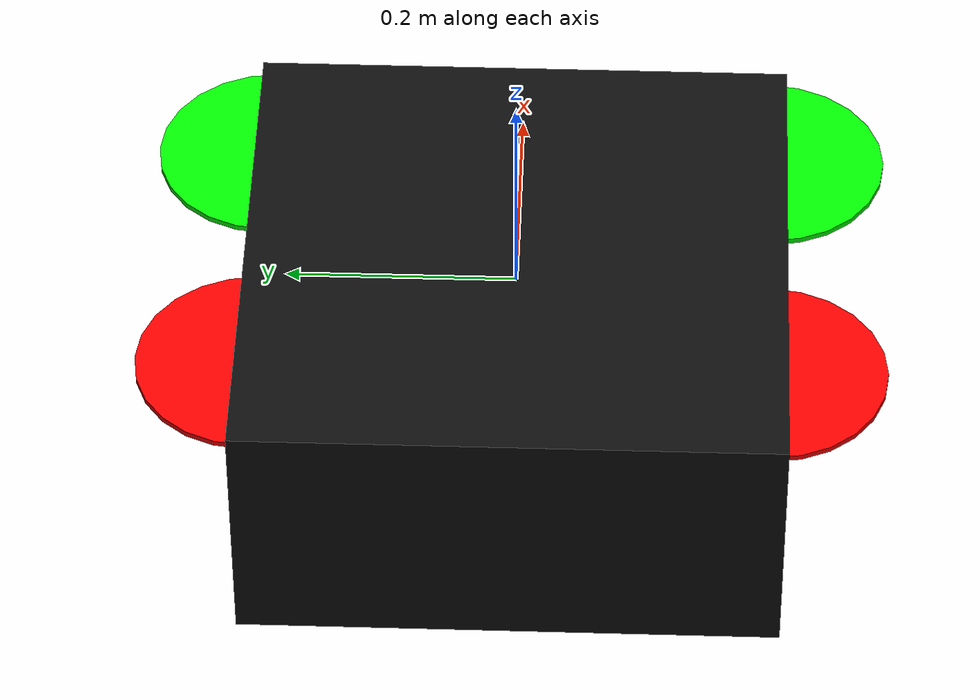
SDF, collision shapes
<?xml version='1.0'?>
<sdf version="1.9">
  <model name="iris_with_ardupilot">
    <include>
      <uri>model://iris_with_standoffs</uri>
    </include>
    <!-- plugins -->
    <plugin filename="gz-sim-imu-system"
      name="gz::sim::systems::Imu">
    </plugin>
    <plugin filename="gz-sim-joint-state-publisher-system"
      name="gz::sim::systems::JointStatePublisher">
    </plugin>
    <plugin filename="gz-sim-lift-drag-system"
        name="gz::sim::systems::LiftDrag">
      <a0>0.3</a0>
      <alpha_stall>1.4</alpha_stall>
      <cla>4.2500</cla>
      <cda>0.10</cda>
      <cma>0.0</cma>
      <cla_stall>-0.025</cla_stall>
      <cda_stall>0.0</cda_stall>
      <cma_stall>0.0</cma_stall>
      <area>0.002</area>
      <air_density>1.2041</air_density>
      <cp>0.084 0 0</cp>
      <forward>0 -1 0</forward>
      <upward>0 0 1</upward>
      <link_name>iris_with_standoffs::rotor_0</link_name>
    </plugin>
    <plugin filename="gz-sim-lift-drag-system"
        name="gz::sim::systems::LiftDrag">
      <a0>0.3</a0>
      <alpha_stall>1.4</alpha_stall>
      <cla>4.2500</cla>
      <cda>0.10</cda>
      <cma>0.0</cma>
      <cla_stall>-0.025</cla_stall>
      <cda_stall>0.0</cda_stall>
      <cma_stall>0.0</cma_stall>
      <area>0.002</area>
      <air_density>1.2041</air_density>
      <cp>-0.084 0 0</cp>
      <forward>0 1 0</forward>
      <upward>0 0 1</upward>
      <link_name>iris_with_standoffs::rotor_0</link_name>
    </plugin>

    <plugin filename="gz-sim-lift-drag-system"
        name="gz::sim::systems::LiftDrag">
      <a0>0.3</a0>
      <alpha_stall>1.4</alpha_stall>
      <cla>4.2500</cla>
      <cda>0.10</cda>
      <cma>0.0</cma>
      <cla_stall>-0.025</cla_stall>
      <cda_stall>0.0</cda_stall>
      <cma_stall>0.0</cma_stall>
      <area>0.002</area>
      <air_density>1.2041</air_density>
      <cp>0.084 0 0</cp>
      <forward>0 -1 0</forward>
      <upward>0 0 1</upward>
      <link_name>iris_with_standoffs::rotor_1</link_name>
    </plugin>
    <plugin filename="gz-sim-lift-drag-system"
        name="gz::sim::systems::LiftDrag">
      <a0>0.3</a0>
      <alpha_stall>1.4</alpha_stall>
      <cla>4.2500</cla>
      <cda>0.10</cda>
      <cma>0.0</cma>
      <cla_stall>-0.025</cla_stall>
      <cda_stall>0.0</cda_stall>
      <cma_stall>0.0</cma_stall>
      <area>0.002</area>
      <air_density>1.2041</air_density>
      <cp>-0.084 0 0</cp>
      <forward>0 1 0</forward>
      <upward>0 0 1</upward>
      <link_name>iris_with_standoffs::rotor_1</link_name>
    </plugin>

    <plugin filename="gz-sim-lift-drag-system"
        name="gz::sim::systems::LiftDrag">
      <a0>0.3</a0>
      <alpha_stall>1.4</alpha_stall>
      <cla>4.2500</cla>
      <cda>0.10</cda>
      <cma>0.0</cma>
      <cla_stall>-0.025</cla_stall>
      <cda_stall>0.0</cda_stall>
      <cma_stall>0.0</cma_stall>
      <area>0.002</area>
      <air_density>1.2041</air_density>
      <cp>0.084 0 0</cp>
      <forward>0 1 0</forward>
      <upward>0 0 1</upward>
      <link_name>iris_with_standoffs::rotor_2</link_name>
    </plugin>
    <plugin filename="gz-sim-lift-drag-system"
        name="gz::sim::systems::LiftDrag">
      <a0>0.3</a0>
      <alpha_stall>1.4</alpha_stall>
      <cla>4.2500</cla>
      <cda>0.10</cda>
      <cma>0.0</cma>
      <cla_stall>-0.025</cla_stall>
      <cda_stall>0.0</cda_stall>
      <cma_stall>0.0</cma_stall>
      <area>0.002</area>
      <air_density>1.2041</air_density>
      <cp>-0.084 0 0</cp>
      <forward>0 -1 0</forward>
      <upward>0 0 1</upward>
      <link_name>iris_with_standoffs::rotor_2</link_name>
    </plugin>

    <plugin filename="gz-sim-lift-drag-system"
        name="gz::sim::systems::LiftDrag">
      <a0>0.3</a0>
      <alpha_stall>1.4</alpha_stall>
      <cla>4.2500</cla>
      <cda>0.10</cda>
      <cma>0.0</cma>
      <cla_stall>-0.025</cla_stall>
      <cda_stall>0.0</cda_stall>
      <cma_stall>0.0</cma_stall>
      <area>0.002</area>
      <air_density>1.2041</air_density>
      <cp>0.084 0 0</cp>
      <forward>0 1 0</forward>
      <upward>0 0 1</upward>
      <link_name>iris_with_standoffs::rotor_3</link_name>
    </plugin>
    <plugin filename="gz-sim-lift-drag-system"
        name="gz::sim::systems::LiftDrag">
      <a0>0.3</a0>
      <alpha_stall>1.4</alpha_stall>
      <cla>4.2500</cla>
      <cda>0.10</cda>
      <cma>0.0</cma>
      <cla_stall>-0.025</cla_stall>
      <cda_stall>0.0</cda_stall>
      <cma_stall>0.0</cma_stall>
      <area>0.002</area>
      <air_density>1.2041</air_density>
      <cp>-0.084 0 0</cp>
      <forward>0 -1 0</forward>
      <upward>0 0 1</upward>
      <link_name>iris_with_standoffs::rotor_3</link_name>
    </plugin>

    <plugin filename="gz-sim-apply-joint-force-system"
      name="gz::sim::systems::ApplyJointForce">
      <joint_name>iris_with_standoffs::rotor_0_joint</joint_name>
    </plugin>
    <plugin filename="gz-sim-apply-joint-force-system"
      name="gz::sim::systems::ApplyJointForce">
      <joint_name>iris_with_standoffs::rotor_1_joint</joint_name>
    </plugin>
    <plugin filename="gz-sim-apply-joint-force-system"
      name="gz::sim::systems::ApplyJointForce">
      <joint_name>iris_with_standoffs::rotor_2_joint</joint_name>
    </plugin>
    <plugin filename="gz-sim-apply-joint-force-system"
      name="gz::sim::systems::ApplyJointForce">
      <joint_name>iris_with_standoffs::rotor_3_joint</joint_name>
    </plugin>

	<plugin filename="Iflight" name="Iflight">
		<rotor index="0">
			<joint_name>iris_with_standoffs::rotor_0_joint</joint_name>
			<direction_k>-1</direction_k>
		</rotor>
		<rotor index="2">
			<joint_name>iris_with_standoffs::rotor_2_joint</joint_name>
			<direction_k>1</direction_k>
		</rotor>
		<rotor index="1">
			<joint_name>iris_with_standoffs::rotor_1_joint</joint_name>
			<direction_k>-1</direction_k>
		</rotor>
		<rotor index="3">
			<joint_name>iris_with_standoffs::rotor_3_joint</joint_name>
			<direction_k>1</direction_k>
		</rotor>
	</plugin>

  </model>
</sdf>

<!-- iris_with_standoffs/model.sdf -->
<sdf version='1.9'>
  <model name='iris_with_standoffs'>
    <pose>0 0 0 0 0 0</pose>
    <link name='base_link'>
      <velocity_decay>
        <linear>0.0</linear>
        <angular>0.0</angular>
      </velocity_decay>
      <inertial>
        <pose>0 0 0 0 0 0</pose>
        <mass>1.5</mass>
        <inertia>
          <ixx>0.008</ixx>
          <ixy>0</ixy>
          <ixz>0</ixz>
          <iyy>0.015</iyy>
          <iyz>0</iyz>
          <izz>0.017</izz>
        </inertia>
      </inertial>
      <collision name='base_collision'>
        <pose>0 0 -0.08 0 0 0</pose>
        <geometry>
          <box>
            <size>0.47 0.47 0.23</size>
          </box>
        </geometry>
        <surface>
          <contact>
            <ode>
              <max_vel>100.0</max_vel>
              <min_depth>0.001</min_depth>
            </ode>
          </contact>
          <friction>
            <ode>
              <mu>100000.0</mu>
              <mu2>100000.0</mu2>
            </ode>
          </friction>
        </surface>
      </collision>
      <visual name='base_visual'>
        <geometry>
          <mesh>
            <uri>model://iris_with_standoffs/meshes/iris.dae</uri>
          </mesh>
        </geometry>
        <material>
          <ambient>0.05 0.05 0.05</ambient>
          <diffuse>0.05 0.05 0.05</diffuse>
          <specular>1 1 1 1</specular>
          <pbr>
            <metal>
              <metalness>0.5</metalness>
              <roughness>0.5</roughness>
            </metal>
          </pbr>
        </material>
      </visual>

      <visual name='front_left_leg_visual'>
        <pose>0.123 0.22 -0.11 0 0 0</pose>
        <geometry>
          <cylinder>
            <radius>0.005</radius>
            <length>0.17</length>
          </cylinder>
        </geometry>
        <material>
          <ambient>0.05 0.05 0.05</ambient>
          <diffuse>0.05 0.05 0.05</diffuse>
          <specular>0.01 0.01 0.01 1.0</specular>
          <pbr>
            <metal>
              <metalness>0.5</metalness>
              <roughness>0.5</roughness>
            </metal>
          </pbr>
        </material>
      </visual>
      <visual name='front_right_leg_visual'>
        <pose>0.123 -0.22 -0.11 0 0 0</pose>
        <geometry>
          <cylinder>
            <radius>0.005</radius>
            <length>0.17</length>
          </cylinder>
        </geometry>
        <material>
          <ambient>0.05 0.05 0.05</ambient>
          <diffuse>0.05 0.05 0.05</diffuse>
          <specular>0.01 0.01 0.01 1.0</specular>
          <pbr>
            <metal>
              <metalness>0.5</metalness>
              <roughness>0.5</roughness>
            </metal>
          </pbr>
        </material>
      </visual>
      <visual name='rear_left_leg_visual'>
        <pose>-0.140 0.21 -0.11 0 0 0</pose>
        <geometry>
          <cylinder>
            <radius>0.005</radius>
            <length>0.17</length>
          </cylinder>
        </geometry>
        <material>
          <ambient>0.05 0.05 0.05</ambient>
          <diffuse>0.05 0.05 0.05</diffuse>
          <specular>0.01 0.01 0.01 1.0</specular>
          <pbr>
            <metal>
              <metalness>0.5</metalness>
              <roughness>0.5</roughness>
            </metal>
          </pbr>
        </material>
      </visual>
      <visual name='rear_right_leg_visual'>
        <pose>-0.140 -0.21 -0.11 0 0 0</pose>
        <geometry>
          <cylinder>
            <radius>0.005</radius>
            <length>0.17</length>
          </cylinder>
        </geometry>
        <material>
          <ambient>0.05 0.05 0.05</ambient>
          <diffuse>0.05 0.05 0.05</diffuse>
          <specular>0.01 0.01 0.01 1.0</specular>
          <pbr>
            <metal>
              <metalness>0.5</metalness>
              <roughness>0.5</roughness>
            </metal>
          </pbr>
        </material>
      </visual>
    </link>
    <link name='imu_link'>
      <inertial>
        <pose>0 0 0 0 0 0</pose>
        <mass>0.15</mass>
        <inertia>
          <ixx>0.00001</ixx>
          <ixy>0</ixy>
          <ixz>0</ixz>
          <iyy>0.00002</iyy>
          <iyz>0</iyz>
          <izz>0.00002</izz>
        </inertia>
      </inertial>
      <sensor name="imu_sensor" type="imu">
        <pose degrees="true">0 0 0 0 0 90</pose>
        <always_on>1</always_on>
        <update_rate>1000.0</update_rate>
        <topic>imu</topic>
      </sensor>
    </link>
    <link name="camera_link">
      <pose degrees="true">-2 0 0.8 0 15 0</pose>
      <inertial>
        <mass>0</mass>
        <inertia>
          <ixx>0.0</ixx>
          <ixy>0</ixy>
          <ixz>0</ixz>
          <iyy>0.0</iyy>
          <iyz>0</iyz>
          <izz>0.0</izz>
        </inertia>
      </inertial>
      <sensor name="camera" type="camera">
        <camera>
          <horizontal_fov>1.047</horizontal_fov>
          <image>
            <width>1280</width>
            <height>720</height>
          </image>
          <clip>
            <near>0.1</near>
            <far>500</far>
          </clip>
        </camera>
        <always_on>1</always_on>
        <update_rate>60</update_rate>
        <visualize>true</visualize>
        <topic>camera</topic>
      </sensor>
    </link>

    <joint name='imu_joint' type='revolute'>
      <child>imu_link</child>
      <parent>base_link</parent>
      <axis>
        <xyz>0 0 1</xyz>
        <limit>
          <lower>0</lower>
          <upper>0</upper>
          <effort>0</effort>
          <velocity>0</velocity>
        </limit>
        <dynamics>
          <damping>1.0</damping>
        </dynamics>
      </axis>
    </joint>

    <joint name="camera_joint" type="fixed">
			<child>camera_link</child>
			<parent>base_link</parent>
		</joint>
    <link name='rotor_0'>
      <pose>0.13 -0.22 0.023 0 0 0</pose>
      <inertial>
        <pose>0 0 0 0 0 0</pose>
        <mass>0.025</mass>
        <inertia>
          <ixx>9.75e-06</ixx>
          <ixy>0</ixy>
          <ixz>0</ixz>
          <iyy>0.000166704</iyy>
          <iyz>0</iyz>
          <izz>0.000167604</izz>
        </inertia>
      </inertial>
      <collision name='rotor_0_collision'>
        <pose>0 0 0 0 0 0</pose>
        <geometry>
          <cylinder>
            <length>0.005</length>
            <radius>0.1</radius>
          </cylinder>
        </geometry>
        <surface>
          <contact>
            <ode/>
          </contact>
          <friction>
            <ode/>
          </friction>
        </surface>
      </collision>
      <visual name='rotor_0_visual'>
        <pose>0 0 0 0 0 0</pose>
        <geometry>
          <mesh>
            <scale>1 1 1</scale>
            <uri>model://iris_with_standoffs/meshes/iris_prop_cw.dae</uri>
          </mesh>
        </geometry>
        <material>
          <ambient>0 1 0</ambient>
          <diffuse>0 1 0</diffuse>
          <specular>1 1 1 1</specular>
          <pbr>
            <metal>
              <metalness>0.5</metalness>
              <roughness>0.5</roughness>
            </metal>
          </pbr>
        </material>
      </visual>
      <gravity>1</gravity>
      <velocity_decay/>
      <self_collide>0</self_collide>
    </link>
    <joint name='rotor_0_joint' type='revolute'>
      <child>rotor_0</child>
      <parent>base_link</parent>
      <axis>
        <xyz>0 0 1</xyz>
        <limit>
          <lower>-1e+16</lower>
          <upper>1e+16</upper>
        </limit>
        <dynamics>
          <damping>0.004</damping>
        </dynamics>
      </axis>
      <physics>
        <ode>
          <implicit_spring_damper>1</implicit_spring_damper>
        </ode>
      </physics>
    </joint>
    <link name='rotor_1'>
      <pose>-0.13 0.22 0.023 0 0 0</pose>
      <inertial>
        <pose>0 0 0 0 0 0</pose>
        <mass>0.025</mass>
        <inertia>
          <ixx>9.75e-06</ixx>
          <ixy>0</ixy>
          <ixz>0</ixz>
          <iyy>0.000166704</iyy>
          <iyz>0</iyz>
          <izz>0.000167604</izz>
        </inertia>
      </inertial>
      <collision name='rotor_1_collision'>
        <pose>0 0 0 0 0 0</pose>
        <geometry>
          <cylinder>
            <length>0.005</length>
            <radius>0.1</radius>
          </cylinder>
        </geometry>
        <surface>
          <contact>
            <ode/>
          </contact>
          <friction>
            <ode/>
          </friction>
        </surface>
      </collision>
      <visual name='rotor_1_visual'>
        <pose>0 0 0 0 0 0</pose>
        <geometry>
          <mesh>
            <scale>1 1 1</scale>
            <uri>model://iris_with_standoffs/meshes/iris_prop_cw.dae</uri>
          </mesh>
        </geometry>
        <material>
          <ambient>1 0 0</ambient>
          <diffuse>1 0 0</diffuse>
          <specular>1 1 1 1</specular>
          <pbr>
            <metal>
              <metalness>0.5</metalness>
              <roughness>0.5</roughness>
            </metal>
          </pbr>
        </material>
      </visual>
      <gravity>1</gravity>
      <velocity_decay/>
      <self_collide>0</self_collide>
    </link>
    <joint name='rotor_1_joint' type='revolute'>
      <child>rotor_1</child>
      <parent>base_link</parent>
      <axis>
        <xyz>0 0 1</xyz>
        <limit>
          <lower>-1e+16</lower>
          <upper>1e+16</upper>
        </limit>
        <dynamics>
          <damping>0.004</damping>
        </dynamics>
      </axis>
      <physics>
        <ode>
          <implicit_spring_damper>1</implicit_spring_damper>
        </ode>
      </physics>
    </joint>
    <link name='rotor_2'>
      <pose>0.13 0.22 0.023 0 0 0</pose>
      <inertial>
        <pose>0 0 0 0 0 0</pose>
        <mass>0.025</mass>
        <inertia>
          <ixx>9.75e-06</ixx>
          <ixy>0</ixy>
          <ixz>0</ixz>
          <iyy>0.000166704</iyy>
          <iyz>0</iyz>
          <izz>0.000167604</izz>
        </inertia>
      </inertial>
      <collision name='rotor_2_collision'>
        <pose>0 0 0 0 0 0</pose>
        <geometry>
          <cylinder>
            <length>0.005</length>
            <radius>0.1</radius>
          </cylinder>
        </geometry>
        <surface>
          <contact>
            <ode/>
          </contact>
          <friction>
            <ode/>
          </friction>
        </surface>
      </collision>
      <visual name='rotor_2_visual'>
        <pose>0 0 0 0 0 0</pose>
        <geometry>
          <mesh>
            <scale>1 1 1</scale>
            <uri>model://iris_with_standoffs/meshes/iris_prop_ccw.dae</uri>
          </mesh>
        </geometry>
        <material>
          <ambient>0 1 0</ambient>
          <diffuse>0 1 0</diffuse>
          <specular>1 1 1 1</specular>
          <pbr>
            <metal>
              <metalness>0.5</metalness>
              <roughness>0.5</roughness>
            </metal>
          </pbr>
        </material>
      </visual>
      <gravity>1</gravity>
      <velocity_decay/>
      <self_collide>0</self_collide>
    </link>
    <joint name='rotor_2_joint' type='revolute'>
      <child>rotor_2</child>
      <parent>base_link</parent>
      <axis>
        <xyz>0 0 1</xyz>
        <limit>
          <lower>-1e+16</lower>
          <upper>1e+16</upper>
        </limit>
        <dynamics>
          <damping>0.004</damping>
        </dynamics>
      </axis>
      <physics>
        <ode>
          <implicit_spring_damper>1</implicit_spring_damper>
        </ode>
      </physics>
    </joint>
    <link name='rotor_3'>
      <pose>-0.13 -0.22 0.023 0 0 0</pose>
      <inertial>
        <pose>0 0 0 0 0 0</pose>
        <mass>0.025</mass>
        <inertia>
          <ixx>9.75e-06</ixx>
          <ixy>0</ixy>
          <ixz>0</ixz>
          <iyy>0.000166704</iyy>
          <iyz>0</iyz>
          <izz>0.000167604</izz>
        </inertia>
      </inertial>
      <collision name='rotor_3_collision'>
        <pose>0 0 0 0 0 0</pose>
        <geometry>
          <cylinder>
            <length>0.005</length>
            <radius>0.1</radius>
          </cylinder>
        </geometry>
        <surface>
          <contact>
            <ode/>
          </contact>
          <friction>
            <ode/>
          </friction>
        </surface>
      </collision>
      <visual name='rotor_3_visual'>
        <pose>0 0 0 0 0 0</pose>
        <geometry>
          <mesh>
            <scale>1 1 1</scale>
            <uri>model://iris_with_standoffs/meshes/iris_prop_ccw.dae</uri>
          </mesh>
        </geometry>
        <material>
          <ambient>1 0 0</ambient>
          <diffuse>1 0 0</diffuse>
          <specular>1 1 1 1</specular>
          <pbr>
            <metal>
              <metalness>0.5</metalness>
              <roughness>0.5</roughness>
            </metal>
          </pbr>
        </material>
      </visual>
      <gravity>1</gravity>
      <velocity_decay/>
      <self_collide>0</self_collide>
    </link>
    <joint name='rotor_3_joint' type='revolute'>
      <child>rotor_3</child>
      <parent>base_link</parent>
      <axis>
        <xyz>0 0 1</xyz>
        <limit>
          <lower>-1e+16</lower>
          <upper>1e+16</upper>
        </limit>
        <dynamics>
          <damping>0.004</damping>
        </dynamics>
      </axis>
      <physics>
        <ode>
          <implicit_spring_damper>1</implicit_spring_damper>
        </ode>
      </physics>
    </joint>
  </model>
</sdf>
